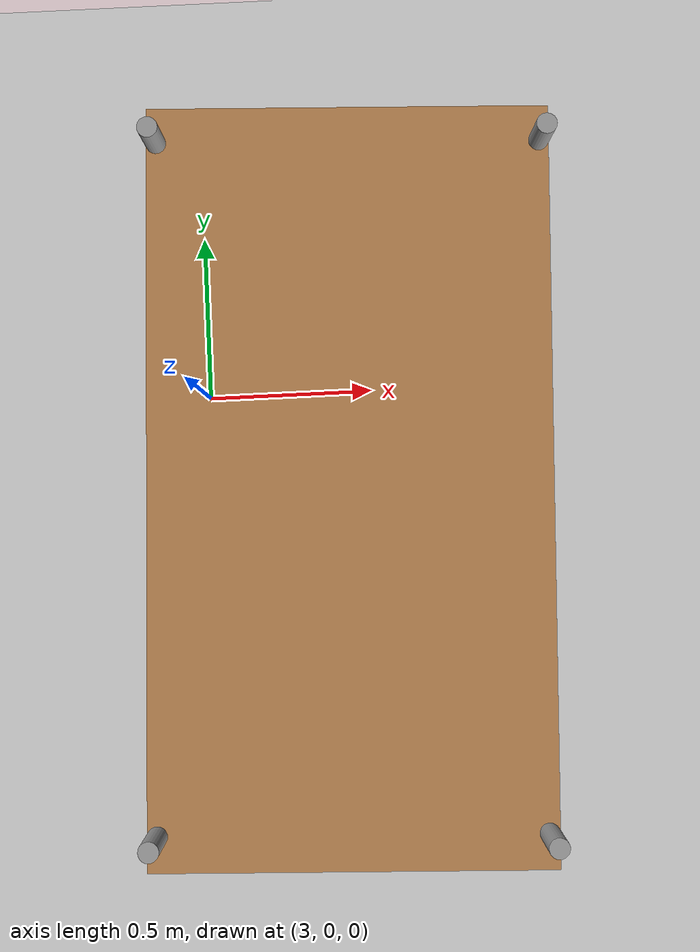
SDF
<sdf version="1.7">
 <world name="default">
  <model name="ground_plane">
   <static>1</static>
   <link name="link">
    <collision name="collision">
     <geometry><plane><normal>0 0 1</normal><size>100 100</size></plane></geometry>
     <surface><friction><ode><mu>100</mu><mu2>50</mu2></ode></friction></surface>
    </collision>
    <visual name="visual">
     <cast_shadows>0</cast_shadows>
     <geometry><plane><normal>0 0 1</normal><size>100 100</size></plane></geometry>
     <material>
      <script><uri>file://media/materials/scripts/gazebo.material</uri><name>Gazebo/Grey</name></script>
     </material>
    </visual>
   </link>
  </model>
  <model name="warehouse_pallet_clone_0_clone_2_clone_2">
   <link name="warehouse_pallet::link">
    <pose>0 0 -0 0 -0 1.57</pose>
    <inertial>
     <inertia>
      <ixx>0.0267042</ixx>
      <ixy>0</ixy>
      <ixz>0</ixz>
      <iyy>0.0937875</iyy>
      <iyz>0</iyz>
      <izz>0.120417</izz>
     </inertia>
     <mass>0.5</mass>
    </inertial>
    <visual name="holding1_visual">
     <pose>0 0.39 0.45 0 -0 0</pose>
     <geometry><box><size>1.5 0.02 0.05</size></box></geometry>
     <material>
      <script><uri>file://media/materials/scripts/gazebo.material</uri><name>Gazebo/Grey</name></script>
      <shader type="pixel"><normal_map>__default__</normal_map></shader>
      <ambient>0.3 0.3 0.3 1</ambient>
      <diffuse>0.7 0.7 0.7 1</diffuse>
      <specular>0.01 0.01 0.01 1</specular>
      <emissive>0 0 0 1</emissive>
     </material>
    </visual>
    <visual name="front_left_leg">
     <pose>0.68 0.38 0.5 0 -0 0</pose>
     <geometry><cylinder><radius>0.02</radius><length>1.2</length></cylinder></geometry>
     <material>
      <script><uri>file://media/materials/scripts/gazebo.material</uri><name>Gazebo/Grey</name></script>
      <shader type="pixel"><normal_map>__default__</normal_map></shader>
      <ambient>0.3 0.3 0.3 1</ambient>
      <diffuse>0.7 0.7 0.7 1</diffuse>
      <specular>0.01 0.01 0.01 1</specular>
      <emissive>0 0 0 1</emissive>
     </material>
    </visual>
    <visual name="front_right_leg">
     <pose>0.68 -0.38 0.5 0 -0 0</pose>
     <geometry><cylinder><radius>0.02</radius><length>1.2</length></cylinder></geometry>
     <material>
      <script><uri>file://media/materials/scripts/gazebo.material</uri><name>Gazebo/Grey</name></script>
      <shader type="pixel"><normal_map>__default__</normal_map></shader>
      <ambient>0.3 0.3 0.3 1</ambient>
      <diffuse>0.7 0.7 0.7 1</diffuse>
      <specular>0.01 0.01 0.01 1</specular>
      <emissive>0 0 0 1</emissive>
     </material>
    </visual>
    <visual name="back_right_leg">
     <pose>-0.68 -0.38 0.5 0 -0 0</pose>
     <geometry><cylinder><radius>0.02</radius><length>1.2</length></cylinder></geometry>
     <material>
      <script><uri>file://media/materials/scripts/gazebo.material</uri><name>Gazebo/Grey</name></script>
      <shader type="pixel"><normal_map>__default__</normal_map></shader>
      <ambient>0.3 0.3 0.3 1</ambient>
      <diffuse>0.7 0.7 0.7 1</diffuse>
      <specular>0.01 0.01 0.01 1</specular>
      <emissive>0 0 0 1</emissive>
     </material>
    </visual>
    <visual name="back_left_leg">
     <pose>-0.68 0.38 0.5 0 -0 0</pose>
     <geometry><cylinder><radius>0.02</radius><length>1.2</length></cylinder></geometry>
     <material>
      <script><uri>file://media/materials/scripts/gazebo.material</uri><name>Gazebo/Grey</name></script>
      <shader type="pixel"><normal_map>__default__</normal_map></shader>
      <ambient>0.3 0.3 0.3 1</ambient>
      <diffuse>0.7 0.7 0.7 1</diffuse>
      <specular>0.01 0.01 0.01 1</specular>
      <emissive>0 0 0 1</emissive>
     </material>
    </visual>
    <visual name="visual1">
     <pose>0 0 0.45 0 -0 0</pose>
     <geometry><box><size>1.5 0.8 0.03</size></box></geometry>
     <material>
      <script><uri>file://media/materials/scripts/gazebo.material</uri><name>Gazebo/Wood</name></script>
      <shader type="pixel"><normal_map>__default__</normal_map></shader>
      <ambient>1 1 1 1</ambient>
      <diffuse>1 1 1 1</diffuse>
      <specular>0.2 0.2 0.2 1</specular>
      <emissive>0 0 0 1</emissive>
     </material>
    </visual>
    <visual name="holding2_visual">
     <pose>0 -0.39 0.45 0 -0 0</pose>
     <geometry><box><size>1.5 0.02 0.05</size></box></geometry>
     <material>
      <script><uri>file://media/materials/scripts/gazebo.material</uri><name>Gazebo/Grey</name></script>
      <shader type="pixel"><normal_map>__default__</normal_map></shader>
      <ambient>0.3 0.3 0.3 1</ambient>
      <diffuse>0.7 0.7 0.7 1</diffuse>
      <specular>0.01 0.01 0.01 1</specular>
      <emissive>0 0 0 1</emissive>
     </material>
    </visual>
    <visual name="holding3_visual">
     <pose>0.735 0 0.45 0 -0 1.57</pose>
     <geometry><box><size>0.8 0.02 0.05</size></box></geometry>
     <material>
      <script><uri>file://media/materials/scripts/gazebo.material</uri><name>Gazebo/Grey</name></script>
      <shader type="pixel"><normal_map>__default__</normal_map></shader>
      <ambient>0.3 0.3 0.3 1</ambient>
      <diffuse>0.7 0.7 0.7 1</diffuse>
      <specular>0.01 0.01 0.01 1</specular>
      <emissive>0 0 0 1</emissive>
     </material>
    </visual>
    <visual name="holding4_visual">
     <pose>-0.735 0 0.45 0 -0 1.57</pose>
     <geometry><box><size>0.8 0.02 0.05</size></box></geometry>
     <material>
      <script><uri>file://media/materials/scripts/gazebo.material</uri><name>Gazebo/Grey</name></script>
      <shader type="pixel"><normal_map>__default__</normal_map></shader>
      <ambient>0.3 0.3 0.3 1</ambient>
      <diffuse>0.7 0.7 0.7 1</diffuse>
      <specular>0.01 0.01 0.01 1</specular>
      <emissive>0 0 0 1</emissive>
     </material>
    </visual>
    <visual name="visual2">
     <pose>0 0 0.6 0 -0 0</pose>
     <geometry><box><size>1.5 0.8 0.03</size></box></geometry>
     <material>
      <script><uri>file://media/materials/scripts/gazebo.material</uri><name>Gazebo/Wood</name></script>
      <shader type="pixel"><normal_map>__default__</normal_map></shader>
      <ambient>1 1 1 1</ambient>
      <diffuse>1 1 1 1</diffuse>
      <specular>0.2 0.2 0.2 1</specular>
      <emissive>0 0 0 1</emissive>
     </material>
    </visual>
    <visual name="visual3">
     <pose>0 0 1 0 -0 0</pose>
     <geometry><box><size>1.5 0.8 0.03</size></box></geometry>
     <material>
      <script><uri>file://media/materials/scripts/gazebo.material</uri><name>Gazebo/Wood</name></script>
      <shader type="pixel"><normal_map>__default__</normal_map></shader>
      <ambient>1 1 1 1</ambient>
      <diffuse>1 1 1 1</diffuse>
      <specular>0.2 0.2 0.2 1</specular>
      <emissive>0 0 0 1</emissive>
     </material>
    </visual>
    <collision name="surface1">
     <pose>0 0 0.45 0 -0 0</pose>
     <geometry><box><size>1.5 0.8 0.03</size></box></geometry>
     <surface>
      <friction>
       <ode><mu>20</mu><mu2>20</mu2><fdir1>0 0 0</fdir1><slip1>0</slip1><slip2>0</slip2></ode>
       <torsional>
        <coefficient>1</coefficient>
        <patch_radius>0</patch_radius>
        <surface_radius>0</surface_radius>
        <use_patch_radius>1</use_patch_radius>
        <ode><slip>0</slip></ode>
       </torsional>
      </friction>
      <bounce><restitution_coefficient>0</restitution_coefficient><threshold>1e+06</threshold></bounce>
      <contact>
       <collide_without_contact>0</collide_without_contact>
       <collide_without_contact_bitmask>1</collide_without_contact_bitmask>
       <collide_bitmask>1</collide_bitmask>
       <ode>
        <soft_cfm>0</soft_cfm>
        <soft_erp>0.2</soft_erp>
        <kp>1e+13</kp>
        <kd>1</kd>
        <max_vel>0.01</max_vel>
        <min_depth>0</min_depth>
       </ode>
       <bullet>
        <split_impulse>1</split_impulse>
        <split_impulse_penetration_threshold>-0.01</split_impulse_penetration_threshold>
        <soft_cfm>0</soft_cfm>
        <soft_erp>0.2</soft_erp>
        <kp>1e+13</kp>
        <kd>1</kd>
       </bullet>
      </contact>
     </surface>
    </collision>
    <collision name="holding1_collision">
     <pose>0 0.39 0.45 0 -0 0</pose>
     <geometry><box><size>1.5 0.02 0.05</size></box></geometry>
     <surface>
      <friction>
       <ode><mu>1e+09</mu><mu2>1e+09</mu2><fdir1>0 0 0</fdir1><slip1>0</slip1><slip2>0</slip2></ode>
       <torsional>
        <coefficient>1</coefficient>
        <patch_radius>0</patch_radius>
        <surface_radius>0</surface_radius>
        <use_patch_radius>1</use_patch_radius>
        <ode><slip>0</slip></ode>
       </torsional>
      </friction>
      <bounce><restitution_coefficient>0</restitution_coefficient><threshold>1e+06</threshold></bounce>
      <contact>
       <collide_without_contact>0</collide_without_contact>
       <collide_without_contact_bitmask>1</collide_without_contact_bitmask>
       <collide_bitmask>1</collide_bitmask>
       <ode>
        <soft_cfm>0</soft_cfm>
        <soft_erp>0.2</soft_erp>
        <kp>1e+13</kp>
        <kd>1</kd>
        <max_vel>0.01</max_vel>
        <min_depth>0</min_depth>
       </ode>
       <bullet>
        <split_impulse>1</split_impulse>
        <split_impulse_penetration_threshold>-0.01</split_impulse_penetration_threshold>
        <soft_cfm>0</soft_cfm>
        <soft_erp>0.2</soft_erp>
        <kp>1e+13</kp>
        <kd>1</kd>
       </bullet>
      </contact>
     </surface>
    </collision>
    <collision name="holding2_collision">
     <pose>0 -0.39 0.45 0 -0 0</pose>
     <geometry><box><size>1.5 0.02 0.05</size></box></geometry>
     <surface>
      <friction>
       <ode><mu>1e+09</mu><mu2>1e+09</mu2><fdir1>0 0 0</fdir1><slip1>0</slip1><slip2>0</slip2></ode>
       <torsional>
        <coefficient>1</coefficient>
        <patch_radius>0</patch_radius>
        <surface_radius>0</surface_radius>
        <use_patch_radius>1</use_patch_radius>
        <ode><slip>0</slip></ode>
       </torsional>
      </friction>
      <bounce><restitution_coefficient>0</restitution_coefficient><threshold>1e+06</threshold></bounce>
      <contact>
       <collide_without_contact>0</collide_without_contact>
       <collide_without_contact_bitmask>1</collide_without_contact_bitmask>
       <collide_bitmask>1</collide_bitmask>
       <ode>
        <soft_cfm>0</soft_cfm>
        <soft_erp>0.2</soft_erp>
        <kp>1e+13</kp>
        <kd>1</kd>
        <max_vel>0.01</max_vel>
        <min_depth>0</min_depth>
       </ode>
       <bullet>
        <split_impulse>1</split_impulse>
        <split_impulse_penetration_threshold>-0.01</split_impulse_penetration_threshold>
        <soft_cfm>0</soft_cfm>
        <soft_erp>0.2</soft_erp>
        <kp>1e+13</kp>
        <kd>1</kd>
       </bullet>
      </contact>
     </surface>
    </collision>
    <collision name="holding3_collision">
     <pose>0.735 0 0.45 0 -0 1.57</pose>
     <geometry><box><size>0.8 0.02 0.05</size></box></geometry>
     <surface>
      <friction>
       <ode><mu>1e+09</mu><mu2>1e+09</mu2><fdir1>0 0 0</fdir1><slip1>0</slip1><slip2>0</slip2></ode>
       <torsional>
        <coefficient>1</coefficient>
        <patch_radius>0</patch_radius>
        <surface_radius>0</surface_radius>
        <use_patch_radius>1</use_patch_radius>
        <ode><slip>0</slip></ode>
       </torsional>
      </friction>
      <bounce><restitution_coefficient>0</restitution_coefficient><threshold>1e+06</threshold></bounce>
      <contact>
       <collide_without_contact>0</collide_without_contact>
       <collide_without_contact_bitmask>1</collide_without_contact_bitmask>
       <collide_bitmask>1</collide_bitmask>
       <ode>
        <soft_cfm>0</soft_cfm>
        <soft_erp>0.2</soft_erp>
        <kp>1e+13</kp>
        <kd>1</kd>
        <max_vel>0.01</max_vel>
        <min_depth>0</min_depth>
       </ode>
       <bullet>
        <split_impulse>1</split_impulse>
        <split_impulse_penetration_threshold>-0.01</split_impulse_penetration_threshold>
        <soft_cfm>0</soft_cfm>
        <soft_erp>0.2</soft_erp>
        <kp>1e+13</kp>
        <kd>1</kd>
       </bullet>
      </contact>
     </surface>
    </collision>
    <collision name="holding4_collision">
     <pose>-0.735 0 0.45 0 -0 1.57</pose>
     <geometry><box><size>0.8 0.02 0.05</size></box></geometry>
     <surface>
      <friction>
       <ode><mu>1e+09</mu><mu2>1e+09</mu2><fdir1>0 0 0</fdir1><slip1>0</slip1><slip2>0</slip2></ode>
       <torsional>
        <coefficient>1</coefficient>
        <patch_radius>0</patch_radius>
        <surface_radius>0</surface_radius>
        <use_patch_radius>1</use_patch_radius>
        <ode><slip>0</slip></ode>
       </torsional>
      </friction>
      <bounce><restitution_coefficient>0</restitution_coefficient><threshold>1e+06</threshold></bounce>
      <contact>
       <collide_without_contact>0</collide_without_contact>
       <collide_without_contact_bitmask>1</collide_without_contact_bitmask>
       <collide_bitmask>1</collide_bitmask>
       <ode>
        <soft_cfm>0</soft_cfm>
        <soft_erp>0.2</soft_erp>
        <kp>1e+13</kp>
        <kd>1</kd>
        <max_vel>0.01</max_vel>
        <min_depth>0</min_depth>
       </ode>
       <bullet>
        <split_impulse>1</split_impulse>
        <split_impulse_penetration_threshold>-0.01</split_impulse_penetration_threshold>
        <soft_cfm>0</soft_cfm>
        <soft_erp>0.2</soft_erp>
        <kp>1e+13</kp>
        <kd>1</kd>
       </bullet>
      </contact>
     </surface>
    </collision>
    <collision name="surface3">
     <pose>0 0 1 0 -0 0</pose>
     <geometry><box><size>1.5 0.8 0.03</size></box></geometry>
     <surface>
      <friction>
       <ode><mu>2.5</mu><mu2>2.5</mu2><fdir1>0 0 0</fdir1><slip1>0</slip1><slip2>0</slip2></ode>
       <torsional>
        <coefficient>1</coefficient>
        <patch_radius>0</patch_radius>
        <surface_radius>0</surface_radius>
        <use_patch_radius>1</use_patch_radius>
        <ode><slip>0</slip></ode>
       </torsional>
      </friction>
      <bounce><restitution_coefficient>0</restitution_coefficient><threshold>1e+06</threshold></bounce>
      <contact>
       <collide_without_contact>0</collide_without_contact>
       <collide_without_contact_bitmask>1</collide_without_contact_bitmask>
       <collide_bitmask>1</collide_bitmask>
       <ode>
        <soft_cfm>0</soft_cfm>
        <soft_erp>0.2</soft_erp>
        <kp>1e+13</kp>
        <kd>1</kd>
        <max_vel>0.01</max_vel>
        <min_depth>0</min_depth>
       </ode>
       <bullet>
        <split_impulse>1</split_impulse>
        <split_impulse_penetration_threshold>-0.01</split_impulse_penetration_threshold>
        <soft_cfm>0</soft_cfm>
        <soft_erp>0.2</soft_erp>
        <kp>1e+13</kp>
        <kd>1</kd>
       </bullet>
      </contact>
     </surface>
    </collision>
    <collision name="surface2">
     <pose>0 0 0.6 0 -0 0</pose>
     <geometry><box><size>1.5 0.8 0.03</size></box></geometry>
     <surface>
      <friction>
       <ode><mu>2.5</mu><mu2>2.5</mu2><fdir1>0 0 0</fdir1><slip1>0</slip1><slip2>0</slip2></ode>
       <torsional>
        <coefficient>1</coefficient>
        <patch_radius>0</patch_radius>
        <surface_radius>0</surface_radius>
        <use_patch_radius>1</use_patch_radius>
        <ode><slip>0</slip></ode>
       </torsional>
      </friction>
      <bounce><restitution_coefficient>0</restitution_coefficient><threshold>1e+06</threshold></bounce>
      <contact>
       <collide_without_contact>0</collide_without_contact>
       <collide_without_contact_bitmask>1</collide_without_contact_bitmask>
       <collide_bitmask>1</collide_bitmask>
       <ode>
        <soft_cfm>0</soft_cfm>
        <soft_erp>0.2</soft_erp>
        <kp>1e+13</kp>
        <kd>1</kd>
        <max_vel>0.01</max_vel>
        <min_depth>0</min_depth>
       </ode>
       <bullet>
        <split_impulse>1</split_impulse>
        <split_impulse_penetration_threshold>-0.01</split_impulse_penetration_threshold>
        <soft_cfm>0</soft_cfm>
        <soft_erp>0.2</soft_erp>
        <kp>1e+13</kp>
        <kd>1</kd>
       </bullet>
      </contact>
     </surface>
    </collision>
    <collision name="front_right_leg">
     <pose>0.68 -0.38 0.5 0 -0 0</pose>
     <geometry><cylinder><radius>0.02</radius><length>1</length></cylinder></geometry>
     <surface>
      <friction>
       <ode><mu>1</mu><mu2>1.2</mu2><fdir1>0 0 0</fdir1><slip1>0</slip1><slip2>0</slip2></ode>
       <torsional>
        <coefficient>1</coefficient>
        <patch_radius>0</patch_radius>
        <surface_radius>0</surface_radius>
        <use_patch_radius>1</use_patch_radius>
        <ode><slip>0</slip></ode>
       </torsional>
      </friction>
      <bounce><restitution_coefficient>0</restitution_coefficient><threshold>1e+06</threshold></bounce>
      <contact>
       <collide_without_contact>0</collide_without_contact>
       <collide_without_contact_bitmask>1</collide_without_contact_bitmask>
       <collide_bitmask>1</collide_bitmask>
       <ode>
        <soft_cfm>0</soft_cfm>
        <soft_erp>0.2</soft_erp>
        <kp>1e+13</kp>
        <kd>1</kd>
        <max_vel>0.01</max_vel>
        <min_depth>0</min_depth>
       </ode>
       <bullet>
        <split_impulse>1</split_impulse>
        <split_impulse_penetration_threshold>-0.01</split_impulse_penetration_threshold>
        <soft_cfm>0</soft_cfm>
        <soft_erp>0.2</soft_erp>
        <kp>1e+13</kp>
        <kd>1</kd>
       </bullet>
      </contact>
     </surface>
    </collision>
    <collision name="back_right_leg">
     <pose>-0.68 -0.38 0.5 0 -0 0</pose>
     <geometry><cylinder><radius>0.02</radius><length>1.2</length></cylinder></geometry>
     <surface>
      <friction>
       <ode><mu>1</mu><mu2>1</mu2><fdir1>0 0 0</fdir1><slip1>0</slip1><slip2>0</slip2></ode>
       <torsional>
        <coefficient>1</coefficient>
        <patch_radius>0</patch_radius>
        <surface_radius>0</surface_radius>
        <use_patch_radius>1</use_patch_radius>
        <ode><slip>0</slip></ode>
       </torsional>
      </friction>
      <bounce><restitution_coefficient>0</restitution_coefficient><threshold>1e+06</threshold></bounce>
      <contact>
       <collide_without_contact>0</collide_without_contact>
       <collide_without_contact_bitmask>1</collide_without_contact_bitmask>
       <collide_bitmask>1</collide_bitmask>
       <ode>
        <soft_cfm>0</soft_cfm>
        <soft_erp>0.2</soft_erp>
        <kp>1e+13</kp>
        <kd>1</kd>
        <max_vel>0.01</max_vel>
        <min_depth>0</min_depth>
       </ode>
       <bullet>
        <split_impulse>1</split_impulse>
        <split_impulse_penetration_threshold>-0.01</split_impulse_penetration_threshold>
        <soft_cfm>0</soft_cfm>
        <soft_erp>0.2</soft_erp>
        <kp>1e+13</kp>
        <kd>1</kd>
       </bullet>
      </contact>
     </surface>
    </collision>
    <collision name="front_left_leg">
     <pose>0.68 0.38 0.5 0 -0 0</pose>
     <geometry><cylinder><radius>0.02</radius><length>1.2</length></cylinder></geometry>
     <surface>
      <friction>
       <ode><mu>1</mu><mu2>1</mu2><fdir1>0 0 0</fdir1><slip1>0</slip1><slip2>0</slip2></ode>
       <torsional>
        <coefficient>1</coefficient>
        <patch_radius>0</patch_radius>
        <surface_radius>0</surface_radius>
        <use_patch_radius>1</use_patch_radius>
        <ode><slip>0</slip></ode>
       </torsional>
      </friction>
      <bounce><restitution_coefficient>0</restitution_coefficient><threshold>1e+06</threshold></bounce>
      <contact>
       <collide_without_contact>0</collide_without_contact>
       <collide_without_contact_bitmask>1</collide_without_contact_bitmask>
       <collide_bitmask>1</collide_bitmask>
       <ode>
        <soft_cfm>0</soft_cfm>
        <soft_erp>0.2</soft_erp>
        <kp>1e+13</kp>
        <kd>1</kd>
        <max_vel>0.01</max_vel>
        <min_depth>0</min_depth>
       </ode>
       <bullet>
        <split_impulse>1</split_impulse>
        <split_impulse_penetration_threshold>-0.01</split_impulse_penetration_threshold>
        <soft_cfm>0</soft_cfm>
        <soft_erp>0.2</soft_erp>
        <kp>1e+13</kp>
        <kd>1</kd>
       </bullet>
      </contact>
     </surface>
    </collision>
    <collision name="back_left_leg">
     <pose>-0.68 0.38 0.5 0 -0 0</pose>
     <geometry><cylinder><radius>0.02</radius><length>1.2</length></cylinder></geometry>
     <surface>
      <friction>
       <ode><mu>1</mu><mu2>1</mu2><fdir1>0 0 0</fdir1><slip1>0</slip1><slip2>0</slip2></ode>
       <torsional>
        <coefficient>1</coefficient>
        <patch_radius>0</patch_radius>
        <surface_radius>0</surface_radius>
        <use_patch_radius>1</use_patch_radius>
        <ode><slip>0</slip></ode>
       </torsional>
      </friction>
      <bounce><restitution_coefficient>0</restitution_coefficient><threshold>1e+06</threshold></bounce>
      <contact>
       <collide_without_contact>0</collide_without_contact>
       <collide_without_contact_bitmask>1</collide_without_contact_bitmask>
       <collide_bitmask>1</collide_bitmask>
       <ode>
        <soft_cfm>0</soft_cfm>
        <soft_erp>0.2</soft_erp>
        <kp>1e+13</kp>
        <kd>1</kd>
        <max_vel>0.01</max_vel>
        <min_depth>0</min_depth>
       </ode>
       <bullet>
        <split_impulse>1</split_impulse>
        <split_impulse_penetration_threshold>-0.01</split_impulse_penetration_threshold>
        <soft_cfm>0</soft_cfm>
        <soft_erp>0.2</soft_erp>
        <kp>1e+13</kp>
        <kd>1</kd>
       </bullet>
      </contact>
     </surface>
    </collision>
   </link>
   <static>0</static>
   <pose>3.41896 -0.316296 0.099963 -8.1e-05 4.4e-05 -0.037705</pose>
  </model>
 </world>
</sdf>
